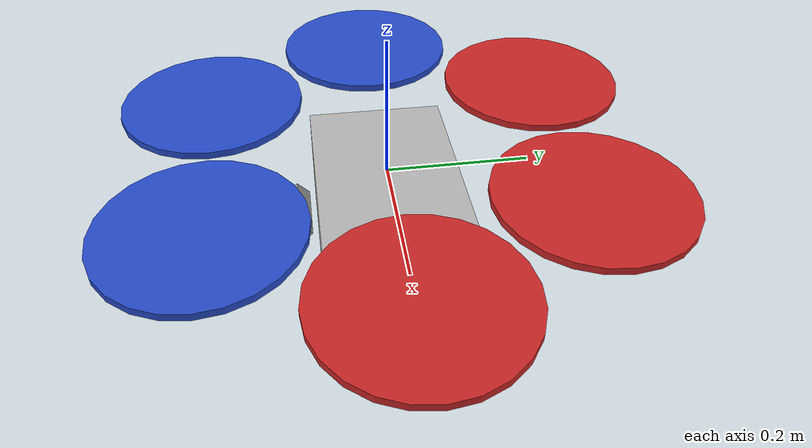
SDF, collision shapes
<?xml version='1.0'?>
<sdf version='1.6'>
  <model name='wasp'>
    <link name='base_link'>
      <pose frame=''>0 0 0 0 -0 0</pose>
      <inertial>
        <pose frame=''>0.004561 -0.033058 -0.053951 0 -0 0</pose>
        <mass>2.164</mass>
        <inertia>
          <ixx>0.0250036</ixx>
          <ixy>0.000925619</ixy>
          <ixz>0.00011064</ixz>
          <iyy>0.0201038</iyy>
          <iyz>-0.000800919</iyz>
          <izz>0.0132168</izz>
        </inertia>
      </inertial>
      <collision name='base_link_fixed_joint_lump__lander_collision'>
        <pose frame=''>0 0 -0.08 0 -0 0</pose>
        <geometry>
          <box>
            <size>0.3 0.2 0.16</size>
          </box>
        </geometry>
      </collision>
      <collision name='base_link_fixed_joint_lump__camera_link_collision_1'>
        <pose frame=''>0 -0.126839 -0.065161 0 0.785398 -1.5708</pose>
        <geometry>
          <box>
            <size>0.02505 0.09 0.025</size>
          </box>
        </geometry>
        <surface>
          <contact>
            <ode>
              <kp>1e+13</kp>
              <kd>1</kd>
            </ode>
          </contact>
          <friction>
            <ode>
              <mu2>1</mu2>
              <fdir1>0 0 0</fdir1>
            </ode>
          </friction>
        </surface>
      </collision>
      <visual name='base_link_visual'>
        <pose frame=''>0 0 0 0 -0 0</pose>
        <geometry>
          <mesh>
            <scale>1 1 1</scale>
            <uri>model://wasp_gazebo/meshes/wasp_core.dae</uri>
          </mesh>
        </geometry>
        <material>
          <script>
            <uri>__default__</uri>
            <name>__default__</name>
          </script>
        </material>
      </visual>
      <visual name='base_link_fixed_joint_lump__arm_0_visual_1'>
        <pose frame=''>0.075 0 0.0125 0 -0 1.5708</pose>
        <geometry>
          <mesh>
            <scale>1 1 1</scale>
            <uri>model://wasp_gazebo/meshes/wasp_arm.dae</uri>
          </mesh>
        </geometry>
      </visual>
      <visual name='base_link_fixed_joint_lump__motor_0_visual_2'>
        <pose frame=''>0.277 0 0.0125 0 -0 0</pose>
        <geometry>
          <mesh>
            <scale>1 1 1</scale>
            <uri>model://wasp_gazebo/meshes/wasp_motor.dae</uri>
          </mesh>
        </geometry>
      </visual>
      <visual name='base_link_fixed_joint_lump__arm_1_visual_3'>
        <pose frame=''>-0.075 0 0.0125 0 -0 -1.5708</pose>
        <geometry>
          <mesh>
            <scale>1 1 1</scale>
            <uri>model://wasp_gazebo/meshes/wasp_arm.dae</uri>
          </mesh>
        </geometry>
      </visual>
      <visual name='base_link_fixed_joint_lump__motor_1_visual_4'>
        <pose frame=''>-0.277 0 0.0125 0 -0 0</pose>
        <geometry>
          <mesh>
            <scale>1 1 1</scale>
            <uri>model://wasp_gazebo/meshes/wasp_motor.dae</uri>
          </mesh>
        </geometry>
      </visual>
      <visual name='base_link_fixed_joint_lump__arm_2_visual_5'>
        <pose frame=''>0.0375 0.064952 0.0125 0 -0 2.61799</pose>
        <geometry>
          <mesh>
            <scale>1 1 1</scale>
            <uri>model://wasp_gazebo/meshes/wasp_arm.dae</uri>
          </mesh>
        </geometry>
      </visual>
      <visual name='base_link_fixed_joint_lump__motor_2_visual_6'>
        <pose frame=''>0.1385 0.239889 0.0125 0 -0 0</pose>
        <geometry>
          <mesh>
            <scale>1 1 1</scale>
            <uri>model://wasp_gazebo/meshes/wasp_motor.dae</uri>
          </mesh>
        </geometry>
      </visual>
      <visual name='base_link_fixed_joint_lump__arm_3_visual_7'>
        <pose frame=''>-0.0375 -0.064952 0.0125 0 -0 -0.523599</pose>
        <geometry>
          <mesh>
            <scale>1 1 1</scale>
            <uri>model://wasp_gazebo/meshes/wasp_arm.dae</uri>
          </mesh>
        </geometry>
      </visual>
      <visual name='base_link_fixed_joint_lump__motor_3_visual_8'>
        <pose frame=''>-0.1385 -0.239889 0.0125 0 -0 0</pose>
        <geometry>
          <mesh>
            <scale>1 1 1</scale>
            <uri>model://wasp_gazebo/meshes/wasp_motor.dae</uri>
          </mesh>
        </geometry>
      </visual>
      <visual name='base_link_fixed_joint_lump__arm_4_visual_9'>
        <pose frame=''>-0.0375 0.064952 0.0125 0 -0 -2.61799</pose>
        <geometry>
          <mesh>
            <scale>1 1 1</scale>
            <uri>model://wasp_gazebo/meshes/wasp_arm.dae</uri>
          </mesh>
        </geometry>
      </visual>
      <visual name='base_link_fixed_joint_lump__motor_4_visual_10'>
        <pose frame=''>-0.1385 0.239889 0.0125 0 -0 0</pose>
        <geometry>
          <mesh>
            <scale>1 1 1</scale>
            <uri>model://wasp_gazebo/meshes/wasp_motor.dae</uri>
          </mesh>
        </geometry>
      </visual>
      <visual name='base_link_fixed_joint_lump__arm_5_visual_11'>
        <pose frame=''>0.0375 -0.064952 0.0125 0 -0 0.523599</pose>
        <geometry>
          <mesh>
            <scale>1 1 1</scale>
            <uri>model://wasp_gazebo/meshes/wasp_arm.dae</uri>
          </mesh>
        </geometry>
      </visual>
      <visual name='base_link_fixed_joint_lump__motor_5_visual_12'>
        <pose frame=''>0.1385 -0.239889 0.0125 0 -0 0</pose>
        <geometry>
          <mesh>
            <scale>1 1 1</scale>
            <uri>model://wasp_gazebo/meshes/wasp_motor.dae</uri>
          </mesh>
        </geometry>
      </visual>
      <visual name='base_link_fixed_joint_lump__leg_0_visual_13'>
        <pose frame=''>0.08044 0.044648 -0.063 0 -0 2.0775</pose>
        <geometry>
          <mesh>
            <scale>1 1 1</scale>
            <uri>model://wasp_gazebo/meshes/wasp_leg.dae</uri>
          </mesh>
        </geometry>
      </visual>
      <visual name='base_link_fixed_joint_lump__leg_1_visual_14'>
        <pose frame=''>0.08044 -0.044648 -0.063 0 -0 1.06409</pose>
        <geometry>
          <mesh>
            <scale>1 1 1</scale>
            <uri>model://wasp_gazebo/meshes/wasp_leg.dae</uri>
          </mesh>
        </geometry>
      </visual>
      <visual name='base_link_fixed_joint_lump__leg_2_visual_15'>
        <pose frame=''>-0.08044 -0.044648 -0.063 0 -0 -1.06409</pose>
        <geometry>
          <mesh>
            <scale>1 1 1</scale>
            <uri>model://wasp_gazebo/meshes/wasp_leg.dae</uri>
          </mesh>
        </geometry>
      </visual>
      <visual name='base_link_fixed_joint_lump__leg_3_visual_16'>
        <pose frame=''>-0.08044 0.044648 -0.063 0 -0 -2.0775</pose>
        <geometry>
          <mesh>
            <scale>1 1 1</scale>
            <uri>model://wasp_gazebo/meshes/wasp_leg.dae</uri>
          </mesh>
        </geometry>
      </visual>
      <visual name='base_link_fixed_joint_lump__rod_0_visual_17'>
        <pose frame=''>0.037 0 -0.036 0 -0 0</pose>
        <geometry>
          <mesh>
            <scale>1 1 1</scale>
            <uri>model://wasp_gazebo/meshes/wasp_support_rod.dae</uri>
          </mesh>
        </geometry>
      </visual>
      <visual name='base_link_fixed_joint_lump__cannister_0_visual_18'>
        <pose frame=''>0.063 -0.076 -0.074 -1.5708 0 0</pose>
        <geometry>
          <mesh>
            <scale>1 1 1</scale>
            <uri>model://wasp_gazebo/meshes/wasp_cannister.dae</uri>
          </mesh>
        </geometry>
      </visual>
      <visual name='base_link_fixed_joint_lump__rod_1_visual_19'>
        <pose frame=''>-0.037 0 -0.036 0 -0 0</pose>
        <geometry>
          <mesh>
            <scale>1 1 1</scale>
            <uri>model://wasp_gazebo/meshes/wasp_support_rod.dae</uri>
          </mesh>
        </geometry>
      </visual>
      <visual name='base_link_fixed_joint_lump__cannister_1_visual_20'>
        <pose frame=''>-0.063 -0.076 -0.074 -1.5708 0 0</pose>
        <geometry>
          <mesh>
            <scale>1 1 1</scale>
            <uri>model://wasp_gazebo/meshes/wasp_cannister.dae</uri>
          </mesh>
        </geometry>
      </visual>
      <visual name='base_link_fixed_joint_lump__camera_link_visual_21'>
        <pose frame=''>0 -0.137375 -0.075697 2.35619 0 0</pose>
        <geometry>
          <mesh>
            <scale>1 1 1</scale>
            <uri>model://realsense2_description/meshes/d435.dae</uri>
          </mesh>
        </geometry>
        <material>
          <script>
            <uri>__default__</uri>
            <name>__default__</name>
          </script>
        </material>
      </visual>
      <velocity_decay/>
      <self_collide>0</self_collide>
      <gravity>1</gravity>
      <velocity_decay/>
      <self_collide>0</self_collide>
      <enable_wind>0</enable_wind>
      <kinematic>0</kinematic>
      <gravity>1</gravity>
      <sensor name='cameracolor' type='camera'>
        <camera name='camera'>
          <horizontal_fov>1.21126</horizontal_fov>
          <image>
            <width>640</width>
            <height>480</height>
            <format>RGB_INT8</format>
          </image>
          <clip>
            <near>0.1</near>
            <far>100</far>
          </clip>
          <noise>
            <type>gaussian</type>
            <mean>0</mean>
            <stddev>0.007</stddev>
          </noise>
        </camera>
        <always_on>1</always_on>
        <update_rate>30</update_rate>
        <visualize>1</visualize>
        <pose frame=''>0.0175 -0.126839 -0.065161 0 0.785398 -1.5708</pose>
      </sensor>
      <sensor name='cameraired1' type='camera'>
        <camera name='camera'>
          <horizontal_fov>1.48702</horizontal_fov>
          <image>
            <width>1280</width>
            <height>720</height>
            <format>L_INT8</format>
          </image>
          <clip>
            <near>0.1</near>
            <far>100</far>
          </clip>
          <noise>
            <type>gaussian</type>
            <mean>0</mean>
            <stddev>0.05</stddev>
          </noise>
        </camera>
        <always_on>1</always_on>
        <update_rate>90</update_rate>
        <visualize>0</visualize>
        <pose frame=''>0.0175 -0.126839 -0.065161 0 0.785398 -1.5708</pose>
      </sensor>
      <sensor name='cameraired2' type='camera'>
        <camera name='camera'>
          <horizontal_fov>1.48702</horizontal_fov>
          <image>
            <width>1280</width>
            <height>720</height>
            <format>L_INT8</format>
          </image>
          <clip>
            <near>0.1</near>
            <far>100</far>
          </clip>
          <noise>
            <type>gaussian</type>
            <mean>0</mean>
            <stddev>0.05</stddev>
          </noise>
        </camera>
        <always_on>1</always_on>
        <update_rate>90</update_rate>
        <visualize>0</visualize>
        <pose frame=''>0.0175 -0.126839 -0.065161 0 0.785398 -1.5708</pose>
      </sensor>
      <sensor name='cameradepth' type='depth'>
        <camera name='camera'>
          <horizontal_fov>1.48702</horizontal_fov>
          <image>
            <width>1280</width>
            <height>720</height>
          </image>
          <clip>
            <near>0.1</near>
            <far>100</far>
          </clip>
          <noise>
            <type>gaussian</type>
            <mean>0</mean>
            <stddev>0.1</stddev>
          </noise>
        </camera>
        <always_on>1</always_on>
        <update_rate>90</update_rate>
        <visualize>0</visualize>
        <pose frame=''>0.0175 -0.126839 -0.065161 0 0.785398 -1.5708</pose>
      </sensor>
    </link>
    <link name='rotor_0'>
      <pose frame=''>0.277 0 0.042 0 -0 0</pose>
      <inertial>
        <pose frame=''>0 0 0 0 -0 0</pose>
        <mass>0.025</mass>
        <inertia>
          <ixx>9.75e-06</ixx>
          <ixy>0</ixy>
          <ixz>0</ixz>
          <iyy>0.0001667</iyy>
          <iyz>0</iyz>
          <izz>0.0001667</izz>
        </inertia>
      </inertial>
      <collision name='rotor_0_collision'>
        <pose frame=''>0 0 0 0 -0 0</pose>
        <geometry>
          <cylinder>
            <length>0.01</length>
            <radius>0.13</radius>
          </cylinder>
        </geometry>
        <surface>
          <contact>
            <ode/>
          </contact>
          <friction>
            <ode/>
          </friction>
        </surface>
      </collision>
      <visual name='rotor_0_visual'>
        <pose frame=''>0 0 0 0 -0 0</pose>
        <geometry>
          <mesh>
            <scale>1 1 1</scale>
            <uri>model://wasp_gazebo/meshes/wasp_prop_cw.dae</uri>
          </mesh>
        </geometry>
        <material>
          <script>
            <name>Gazebo/Red</name>
            <uri>file://media/materials/scripts/gazebo.material</uri>
          </script>
        </material>
      </visual>
      <gravity>1</gravity>
      <velocity_decay/>
      <self_collide>0</self_collide>
    </link>
    <joint name='rotor_0_joint' type='revolute'>
      <child>rotor_0</child>
      <parent>base_link</parent>
      <axis>
        <xyz>0 0 1</xyz>
        <limit>
          <lower>-1e+16</lower>
          <upper>1e+16</upper>
        </limit>
        <dynamics>
          <damping>0.004</damping>
          <friction>0</friction>
          <spring_reference>0</spring_reference>
          <spring_stiffness>0</spring_stiffness>
        </dynamics>
        <use_parent_model_frame>0</use_parent_model_frame>
      </axis>
    </joint>
    <link name='rotor_1'>
      <pose frame=''>-0.277 0 0.042 0 -0 0</pose>
      <inertial>
        <pose frame=''>0 0 0 0 -0 0</pose>
        <mass>0.025</mass>
        <inertia>
          <ixx>9.75e-06</ixx>
          <ixy>0</ixy>
          <ixz>0</ixz>
          <iyy>0.0001667</iyy>
          <iyz>0</iyz>
          <izz>0.0001667</izz>
        </inertia>
      </inertial>
      <collision name='rotor_1_collision'>
        <pose frame=''>0 0 0 0 -0 0</pose>
        <geometry>
          <cylinder>
            <length>0.01</length>
            <radius>0.13</radius>
          </cylinder>
        </geometry>
        <surface>
          <contact>
            <ode/>
          </contact>
          <friction>
            <ode/>
          </friction>
        </surface>
      </collision>
      <visual name='rotor_1_visual'>
        <pose frame=''>0 0 0 0 -0 0</pose>
        <geometry>
          <mesh>
            <scale>1 1 1</scale>
            <uri>model://wasp_gazebo/meshes/wasp_prop_ccw.dae</uri>
          </mesh>
        </geometry>
        <material>
          <script>
            <name>Gazebo/Blue</name>
            <uri>file://media/materials/scripts/gazebo.material</uri>
          </script>
        </material>
      </visual>
      <gravity>1</gravity>
      <velocity_decay/>
      <self_collide>0</self_collide>
    </link>
    <joint name='rotor_1_joint' type='revolute'>
      <child>rotor_1</child>
      <parent>base_link</parent>
      <axis>
        <xyz>0 0 1</xyz>
        <limit>
          <lower>-1e+16</lower>
          <upper>1e+16</upper>
        </limit>
        <dynamics>
          <damping>0.004</damping>
          <friction>0</friction>
          <spring_reference>0</spring_reference>
          <spring_stiffness>0</spring_stiffness>
        </dynamics>
        <use_parent_model_frame>0</use_parent_model_frame>
      </axis>
    </joint>
    <link name='rotor_2'>
      <pose frame=''>0.1385 0.239889 0.042 0 -0 0</pose>
      <inertial>
        <pose frame=''>0 0 0 0 -0 0</pose>
        <mass>0.025</mass>
        <inertia>
          <ixx>9.75e-06</ixx>
          <ixy>0</ixy>
          <ixz>0</ixz>
          <iyy>0.0001667</iyy>
          <iyz>0</iyz>
          <izz>0.0001667</izz>
        </inertia>
      </inertial>
      <collision name='rotor_2_collision'>
        <pose frame=''>0 0 0 0 -0 0</pose>
        <geometry>
          <cylinder>
            <length>0.01</length>
            <radius>0.13</radius>
          </cylinder>
        </geometry>
        <surface>
          <contact>
            <ode/>
          </contact>
          <friction>
            <ode/>
          </friction>
        </surface>
      </collision>
      <visual name='rotor_2_visual'>
        <pose frame=''>0 0 0 0 -0 0</pose>
        <geometry>
          <mesh>
            <scale>1 1 1</scale>
            <uri>model://wasp_gazebo/meshes/wasp_prop_cw.dae</uri>
          </mesh>
        </geometry>
        <material>
          <script>
            <name>Gazebo/Red</name>
            <uri>file://media/materials/scripts/gazebo.material</uri>
          </script>
        </material>
      </visual>
      <gravity>1</gravity>
      <velocity_decay/>
      <self_collide>0</self_collide>
    </link>
    <joint name='rotor_2_joint' type='revolute'>
      <child>rotor_2</child>
      <parent>base_link</parent>
      <axis>
        <xyz>0 0 1</xyz>
        <limit>
          <lower>-1e+16</lower>
          <upper>1e+16</upper>
        </limit>
        <dynamics>
          <damping>0.004</damping>
          <friction>0</friction>
          <spring_reference>0</spring_reference>
          <spring_stiffness>0</spring_stiffness>
        </dynamics>
        <use_parent_model_frame>0</use_parent_model_frame>
      </axis>
    </joint>
    <link name='rotor_3'>
      <pose frame=''>-0.1385 -0.239889 0.042 0 -0 0</pose>
      <inertial>
        <pose frame=''>0 0 0 0 -0 0</pose>
        <mass>0.025</mass>
        <inertia>
          <ixx>9.75e-06</ixx>
          <ixy>0</ixy>
          <ixz>0</ixz>
          <iyy>0.0001667</iyy>
          <iyz>0</iyz>
          <izz>0.0001667</izz>
        </inertia>
      </inertial>
      <collision name='rotor_3_collision'>
        <pose frame=''>0 0 0 0 -0 0</pose>
        <geometry>
          <cylinder>
            <length>0.01</length>
            <radius>0.13</radius>
          </cylinder>
        </geometry>
        <surface>
          <contact>
            <ode/>
          </contact>
          <friction>
            <ode/>
          </friction>
        </surface>
      </collision>
      <visual name='rotor_3_visual'>
        <pose frame=''>0 0 0 0 -0 0</pose>
        <geometry>
          <mesh>
            <scale>1 1 1</scale>
            <uri>model://wasp_gazebo/meshes/wasp_prop_ccw.dae</uri>
          </mesh>
        </geometry>
        <material>
          <script>
            <name>Gazebo/Blue</name>
            <uri>file://media/materials/scripts/gazebo.material</uri>
          </script>
        </material>
      </visual>
      <gravity>1</gravity>
      <velocity_decay/>
      <self_collide>0</self_collide>
    </link>
    <joint name='rotor_3_joint' type='revolute'>
      <child>rotor_3</child>
      <parent>base_link</parent>
      <axis>
        <xyz>0 0 1</xyz>
        <limit>
          <lower>-1e+16</lower>
          <upper>1e+16</upper>
        </limit>
        <dynamics>
          <damping>0.004</damping>
          <friction>0</friction>
          <spring_reference>0</spring_reference>
          <spring_stiffness>0</spring_stiffness>
        </dynamics>
        <use_parent_model_frame>0</use_parent_model_frame>
      </axis>
    </joint>
    <link name='rotor_4'>
      <pose frame=''>-0.1385 0.239889 0.042 0 -0 0</pose>
      <inertial>
        <pose frame=''>0 0 0 0 -0 0</pose>
        <mass>0.025</mass>
        <inertia>
          <ixx>9.75e-06</ixx>
          <ixy>0</ixy>
          <ixz>0</ixz>
          <iyy>0.0001667</iyy>
          <iyz>0</iyz>
          <izz>0.0001667</izz>
        </inertia>
      </inertial>
      <collision name='rotor_4_collision'>
        <pose frame=''>0 0 0 0 -0 0</pose>
        <geometry>
          <cylinder>
            <length>0.01</length>
            <radius>0.13</radius>
          </cylinder>
        </geometry>
        <surface>
          <contact>
            <ode/>
          </contact>
          <friction>
            <ode/>
          </friction>
        </surface>
      </collision>
      <visual name='rotor_4_visual'>
        <pose frame=''>0 0 0 0 -0 0</pose>
        <geometry>
          <mesh>
            <scale>1 1 1</scale>
            <uri>model://wasp_gazebo/meshes/wasp_prop_cw.dae</uri>
          </mesh>
        </geometry>
        <material>
          <script>
            <name>Gazebo/Red</name>
            <uri>file://media/materials/scripts/gazebo.material</uri>
          </script>
        </material>
      </visual>
      <gravity>1</gravity>
      <velocity_decay/>
      <self_collide>0</self_collide>
    </link>
    <joint name='rotor_4_joint' type='revolute'>
      <child>rotor_4</child>
      <parent>base_link</parent>
      <axis>
        <xyz>0 0 1</xyz>
        <limit>
          <lower>-1e+16</lower>
          <upper>1e+16</upper>
        </limit>
        <dynamics>
          <damping>0.004</damping>
          <friction>0</friction>
          <spring_reference>0</spring_reference>
          <spring_stiffness>0</spring_stiffness>
        </dynamics>
        <use_parent_model_frame>0</use_parent_model_frame>
      </axis>
    </joint>
    <link name='rotor_5'>
      <pose frame=''>0.1385 -0.239889 0.042 0 -0 0</pose>
      <inertial>
        <pose frame=''>0 0 0 0 -0 0</pose>
        <mass>0.025</mass>
        <inertia>
          <ixx>9.75e-06</ixx>
          <ixy>0</ixy>
          <ixz>0</ixz>
          <iyy>0.0001667</iyy>
          <iyz>0</iyz>
          <izz>0.0001667</izz>
        </inertia>
      </inertial>
      <collision name='rotor_5_collision'>
        <pose frame=''>0 0 0 0 -0 0</pose>
        <geometry>
          <cylinder>
            <length>0.01</length>
            <radius>0.13</radius>
          </cylinder>
        </geometry>
        <surface>
          <contact>
            <ode/>
          </contact>
          <friction>
            <ode/>
          </friction>
        </surface>
      </collision>
      <visual name='rotor_5_visual'>
        <pose frame=''>0 0 0 0 -0 0</pose>
        <geometry>
          <mesh>
            <scale>1 1 1</scale>
            <uri>model://wasp_gazebo/meshes/wasp_prop_ccw.dae</uri>
          </mesh>
        </geometry>
        <material>
          <script>
            <name>Gazebo/Blue</name>
            <uri>file://media/materials/scripts/gazebo.material</uri>
          </script>
        </material>
      </visual>
      <gravity>1</gravity>
      <velocity_decay/>
      <self_collide>0</self_collide>
    </link>
    <joint name='rotor_5_joint' type='revolute'>
      <child>rotor_5</child>
      <parent>base_link</parent>
      <axis>
        <xyz>0 0 1</xyz>
        <limit>
          <lower>-1e+16</lower>
          <upper>1e+16</upper>
        </limit>
        <dynamics>
          <damping>0.004</damping>
          <friction>0</friction>
          <spring_reference>0</spring_reference>
          <spring_stiffness>0</spring_stiffness>
        </dynamics>
        <use_parent_model_frame>0</use_parent_model_frame>
      </axis>
    </joint>
    <link name='wasp/ground_truth/odometry_sensorgt_link'>
      <pose frame=''>0 0 0 0 -0 0</pose>
      <inertial>
        <pose frame=''>0 0 0 0 -0 0</pose>
        <mass>0.15</mass>
        <inertia>
          <ixx>0.0001</ixx>
          <ixy>0</ixy>
          <ixz>0</ixz>
          <iyy>0.0002</iyy>
          <iyz>0</iyz>
          <izz>0.0002</izz>
        </inertia>
      </inertial>
      <self_collide>0</self_collide>
    </link>
    <joint name='wasp/ground_truth/odometry_sensorgt_joint' type='revolute'>
      <child>wasp/ground_truth/odometry_sensorgt_link</child>
      <parent>base_link</parent>
      <axis>
        <xyz>0 0 1</xyz>
        <limit>
          <lower>0</lower>
          <upper>0</upper>
          <effort>0</effort>
          <velocity>0</velocity>
        </limit>
        <dynamics>
          <damping>1</damping>
          <spring_reference>0</spring_reference>
          <spring_stiffness>0</spring_stiffness>
        </dynamics>
        <use_parent_model_frame>1</use_parent_model_frame>
      </axis>
      <physics>
        <ode>
          <implicit_spring_damper>1</implicit_spring_damper>
        </ode>
      </physics>
    </joint>
    <link name='wasp/imu_link'>
      <inertial>
        <pose frame=''>0 0 0 0 -0 0</pose>
        <mass>0.15</mass>
        <inertia>
          <ixx>1e-05</ixx>
          <ixy>0</ixy>
          <ixz>0</ixz>
          <iyy>1e-05</iyy>
          <iyz>0</iyz>
          <izz>1e-05</izz>
        </inertia>
      </inertial>
      <sensor name='imu_sensor' type='imu'>
        <pose frame=''>0 0 0 -3.14159 -0 0</pose>
        <always_on>1</always_on>
        <update_rate>1000</update_rate>
      </sensor>
      <self_collide>0</self_collide>
    </link>
    <joint name='wasp/imu_joint' type='revolute'>
      <child>wasp/imu_link</child>
      <parent>base_link</parent>
      <axis>
        <xyz>1 0 0</xyz>
        <limit>
          <lower>0</lower>
          <upper>0</upper>
          <effort>0</effort>
          <velocity>0</velocity>
        </limit>
        <dynamics>
          <spring_reference>0</spring_reference>
          <spring_stiffness>0</spring_stiffness>
        </dynamics>
        <use_parent_model_frame>1</use_parent_model_frame>
      </axis>
    </joint>
    <plugin name='rotor_0_blade_1' filename='libLiftDragPlugin.so'>
      <a0>0.3</a0>
      <alpha_stall>1.4</alpha_stall>
      <cla>4.2500</cla>
      <cda>0.10</cda>
      <cma>0.00</cma>
      <cla_stall>-0.025</cla_stall>
      <cda_stall>0.0</cda_stall>
      <cma_stall>0.0</cma_stall>
      <area>0.002</area>
      <air_density>1.2041</air_density>
      <cp>0.084 0 0</cp>
      <forward>0 1 0</forward>
      <upward>0 0 1</upward>
      <link_name>wasp::rotor_0</link_name>
    </plugin>
    <plugin name='rotor_0_blade_2' filename='libLiftDragPlugin.so'>
      <a0>0.3</a0>
      <alpha_stall>1.4</alpha_stall>
      <cla>4.2500</cla>
      <cda>0.10</cda>
      <cma>0.00</cma>
      <cla_stall>-0.025</cla_stall>
      <cda_stall>0.0</cda_stall>
      <cma_stall>0.0</cma_stall>
      <area>0.002</area>
      <air_density>1.2041</air_density>
      <cp>-0.084 0 0</cp>
      <forward>0 -1 0</forward>
      <upward>0 0 1</upward>
      <link_name>wasp::rotor_0</link_name>
    </plugin>
    <plugin name='rotor_1_blade_1' filename='libLiftDragPlugin.so'>
      <a0>0.3</a0>
      <alpha_stall>1.4</alpha_stall>
      <cla>4.2500</cla>
      <cda>0.10</cda>
      <cma>0.00</cma>
      <cla_stall>-0.025</cla_stall>
      <cda_stall>0.0</cda_stall>
      <cma_stall>0.0</cma_stall>
      <area>0.002</area>
      <air_density>1.2041</air_density>
      <cp>0.084 0 0</cp>
      <forward>0 -1 0</forward>
      <upward>0 0 1</upward>
      <link_name>wasp::rotor_1</link_name>
    </plugin>
    <plugin name='rotor_1_blade_2' filename='libLiftDragPlugin.so'>
      <a0>0.3</a0>
      <alpha_stall>1.4</alpha_stall>
      <cla>4.2500</cla>
      <cda>0.10</cda>
      <cma>0.00</cma>
      <cla_stall>-0.025</cla_stall>
      <cda_stall>0.0</cda_stall>
      <cma_stall>0.0</cma_stall>
      <area>0.002</area>
      <air_density>1.2041</air_density>
      <cp>-0.084 0 0</cp>
      <forward>0 1 0</forward>
      <upward>0 0 1</upward>
      <link_name>wasp::rotor_1</link_name>
    </plugin>
    <plugin name='rotor_2_blade_1' filename='libLiftDragPlugin.so'>
      <a0>0.3</a0>
      <alpha_stall>1.4</alpha_stall>
      <cla>4.2500</cla>
      <cda>0.10</cda>
      <cma>0.00</cma>
      <cla_stall>-0.025</cla_stall>
      <cda_stall>0.0</cda_stall>
      <cma_stall>0.0</cma_stall>
      <area>0.002</area>
      <air_density>1.2041</air_density>
      <cp>0.084 0 0</cp>
      <forward>0 1 0</forward>
      <upward>0 0 1</upward>
      <link_name>wasp::rotor_2</link_name>
    </plugin>
    <plugin name='rotor_2_blade_2' filename='libLiftDragPlugin.so'>
      <a0>0.3</a0>
      <alpha_stall>1.4</alpha_stall>
      <cla>4.2500</cla>
      <cda>0.10</cda>
      <cma>0.00</cma>
      <cla_stall>-0.025</cla_stall>
      <cda_stall>0.0</cda_stall>
      <cma_stall>0.0</cma_stall>
      <area>0.002</area>
      <air_density>1.2041</air_density>
      <cp>-0.084 0 0</cp>
      <forward>0 -1 0</forward>
      <upward>0 0 1</upward>
      <link_name>wasp::rotor_2</link_name>
    </plugin>
    <plugin name='rotor_3_blade_1' filename='libLiftDragPlugin.so'>
      <a0>0.3</a0>
      <alpha_stall>1.4</alpha_stall>
      <cla>4.2500</cla>
      <cda>0.10</cda>
      <cma>0.00</cma>
      <cla_stall>-0.025</cla_stall>
      <cda_stall>0.0</cda_stall>
      <cma_stall>0.0</cma_stall>
      <area>0.002</area>
      <air_density>1.2041</air_density>
      <cp>0.084 0 0</cp>
      <forward>0 -1 0</forward>
      <upward>0 0 1</upward>
      <link_name>wasp::rotor_3</link_name>
    </plugin>
    <plugin name='rotor_3_blade_2' filename='libLiftDragPlugin.so'>
      <a0>0.3</a0>
      <alpha_stall>1.4</alpha_stall>
      <cla>4.2500</cla>
      <cda>0.10</cda>
      <cma>0.00</cma>
      <cla_stall>-0.025</cla_stall>
      <cda_stall>0.0</cda_stall>
      <cma_stall>0.0</cma_stall>
      <area>0.002</area>
      <air_density>1.2041</air_density>
      <cp>-0.084 0 0</cp>
      <forward>0 1 0</forward>
      <upward>0 0 1</upward>
      <link_name>wasp::rotor_3</link_name>
    </plugin>
    <plugin name='rotor_4_blade_1' filename='libLiftDragPlugin.so'>
      <a0>0.3</a0>
      <alpha_stall>1.4</alpha_stall>
      <cla>4.2500</cla>
      <cda>0.10</cda>
      <cma>0.00</cma>
      <cla_stall>-0.025</cla_stall>
      <cda_stall>0.0</cda_stall>
      <cma_stall>0.0</cma_stall>
      <area>0.002</area>
      <air_density>1.2041</air_density>
      <cp>0.084 0 0</cp>
      <forward>0 1 0</forward>
      <upward>0 0 1</upward>
      <link_name>wasp::rotor_4</link_name>
    </plugin>
    <plugin name='rotor_4_blade_2' filename='libLiftDragPlugin.so'>
      <a0>0.3</a0>
      <alpha_stall>1.4</alpha_stall>
      <cla>4.2500</cla>
      <cda>0.10</cda>
      <cma>0.00</cma>
      <cla_stall>-0.025</cla_stall>
      <cda_stall>0.0</cda_stall>
      <cma_stall>0.0</cma_stall>
      <area>0.002</area>
      <air_density>1.2041</air_density>
      <cp>-0.084 0 0</cp>
      <forward>0 -1 0</forward>
      <upward>0 0 1</upward>
      <link_name>wasp::rotor_4</link_name>
    </plugin>
    <plugin name='rotor_5_blade_1' filename='libLiftDragPlugin.so'>
      <a0>0.3</a0>
      <alpha_stall>1.4</alpha_stall>
      <cla>4.2500</cla>
      <cda>0.10</cda>
      <cma>0.00</cma>
      <cla_stall>-0.025</cla_stall>
      <cda_stall>0.0</cda_stall>
      <cma_stall>0.0</cma_stall>
      <area>0.002</area>
      <air_density>1.2041</air_density>
      <cp>0.084 0 0</cp>
      <forward>0 -1 0</forward>
      <upward>0 0 1</upward>
      <link_name>wasp::rotor_5</link_name>
    </plugin>
    <plugin name='rotor_5_blade_2' filename='libLiftDragPlugin.so'>
      <a0>0.3</a0>
      <alpha_stall>1.4</alpha_stall>
      <cla>4.2500</cla>
      <cda>0.10</cda>
      <cma>0.00</cma>
      <cla_stall>-0.025</cla_stall>
      <cda_stall>0.0</cda_stall>
      <cma_stall>0.0</cma_stall>
      <area>0.002</area>
      <air_density>1.2041</air_density>
      <cp>-0.084 0 0</cp>
      <forward>0 1 0</forward>
      <upward>0 0 1</upward>
      <link_name>wasp::rotor_5</link_name>
    </plugin>
    <plugin name='arducopter_plugin' filename='libArduPilotPlugin.so'>
      <fdm_addr>127.0.0.1</fdm_addr>
      <fdm_port_in>9002</fdm_port_in>
      <fdm_port_out>9003</fdm_port_out>
      <modelXYZToAirplaneXForwardZDown>0 0 0 3.141593 0 0</modelXYZToAirplaneXForwardZDown>
      <gazeboXYZToNED>0 0 0 3.141593 0 0</gazeboXYZToNED>
      <imuName>wasp::wasp/imu_link::imu_sensor</imuName>
      <connectionTimeoutMaxCount>5</connectionTimeoutMaxCount>
      <control channel='0'>
        <type>VELOCITY</type>
        <offset>0</offset>
        <p_gain>0.20</p_gain>
        <i_gain>0</i_gain>
        <d_gain>0</d_gain>
        <i_max>0</i_max>
        <i_min>0</i_min>
        <cmd_max>2.5</cmd_max>
        <cmd_min>-2.5</cmd_min>
        <jointName>wasp::rotor_0_joint</jointName>
        <multiplier>920</multiplier>
        <controlVelocitySlowdownSim>1</controlVelocitySlowdownSim>
      </control>
      <control channel='1'>
        <type>VELOCITY</type>
        <offset>0</offset>
        <p_gain>0.20</p_gain>
        <i_gain>0</i_gain>
        <d_gain>0</d_gain>
        <i_max>0</i_max>
        <i_min>0</i_min>
        <cmd_max>2.5</cmd_max>
        <cmd_min>-2.5</cmd_min>
        <jointName>wasp::rotor_1_joint</jointName>
        <multiplier>-920</multiplier>
        <controlVelocitySlowdownSim>1</controlVelocitySlowdownSim>
      </control>
      <control channel='2'>
        <type>VELOCITY</type>
        <offset>0</offset>
        <p_gain>0.20</p_gain>
        <i_gain>0</i_gain>
        <d_gain>0</d_gain>
        <i_max>0</i_max>
        <i_min>0</i_min>
        <cmd_max>2.5</cmd_max>
        <cmd_min>-2.5</cmd_min>
        <jointName>wasp::rotor_2_joint</jointName>
        <multiplier>920</multiplier>
        <controlVelocitySlowdownSim>1</controlVelocitySlowdownSim>
      </control>
      <control channel='3'>
        <type>VELOCITY</type>
        <offset>0</offset>
        <p_gain>0.20</p_gain>
        <i_gain>0</i_gain>
        <d_gain>0</d_gain>
        <i_max>0</i_max>
        <i_min>0</i_min>
        <cmd_max>2.5</cmd_max>
        <cmd_min>-2.5</cmd_min>
        <jointName>wasp::rotor_3_joint</jointName>
        <multiplier>-920</multiplier>
        <controlVelocitySlowdownSim>1</controlVelocitySlowdownSim>
      </control>
      <control channel='4'>
        <type>VELOCITY</type>
        <offset>0</offset>
        <p_gain>0.20</p_gain>
        <i_gain>0</i_gain>
        <d_gain>0</d_gain>
        <i_max>0</i_max>
        <i_min>0</i_min>
        <cmd_max>2.5</cmd_max>
        <cmd_min>-2.5</cmd_min>
        <jointName>wasp::rotor_4_joint</jointName>
        <multiplier>920</multiplier>
        <controlVelocitySlowdownSim>1</controlVelocitySlowdownSim>
      </control>
      <control channel='5'>
        <type>VELOCITY</type>
        <offset>0</offset>
        <p_gain>0.20</p_gain>
        <i_gain>0</i_gain>
        <d_gain>0</d_gain>
        <i_max>0</i_max>
        <i_min>0</i_min>
        <cmd_max>2.5</cmd_max>
        <cmd_min>-2.5</cmd_min>
        <jointName>wasp::rotor_5_joint</jointName>
        <multiplier>-920</multiplier>
        <controlVelocitySlowdownSim>1</controlVelocitySlowdownSim>
      </control>
    </plugin>
    <static>0</static>
    <plugin name='camera' filename='librealsense_gazebo_plugin.so'>
      <prefix>camera</prefix>
      <depthUpdateRate>30.0</depthUpdateRate>
      <colorUpdateRate>30.0</colorUpdateRate>
      <infraredUpdateRate>30.0</infraredUpdateRate>
      <depthTopicName>depth/image_raw</depthTopicName>
      <depthCameraInfoTopicName>depth/camera_info</depthCameraInfoTopicName>
      <colorTopicName>color/image_raw</colorTopicName>
      <colorCameraInfoTopicName>color/camera_info</colorCameraInfoTopicName>
      <infrared1TopicName>infra1/image_raw</infrared1TopicName>
      <infrared1CameraInfoTopicName>infra1/camera_info</infrared1CameraInfoTopicName>
      <infrared2TopicName>infra2/image_raw</infrared2TopicName>
      <infrared2CameraInfoTopicName>infra2/camera_info</infrared2CameraInfoTopicName>
      <colorOpticalframeName>camera_color_optical_frame</colorOpticalframeName>
      <depthOpticalframeName>camera_depth_optical_frame</depthOpticalframeName>
      <infrared1OpticalframeName>camera_left_ir_optical_frame</infrared1OpticalframeName>
      <infrared2OpticalframeName>camera_right_ir_optical_frame</infrared2OpticalframeName>
      <rangeMinDepth>0.2</rangeMinDepth>
      <rangeMaxDepth>10.0</rangeMaxDepth>
      <pointCloud>1</pointCloud>
      <pointCloudTopicName>depth/color/points</pointCloudTopicName>
      <pointCloudCutoff>0.25</pointCloudCutoff>
      <pointCloudCutoffMax>9.0</pointCloudCutoffMax>
    </plugin>
  </model>
</sdf>
